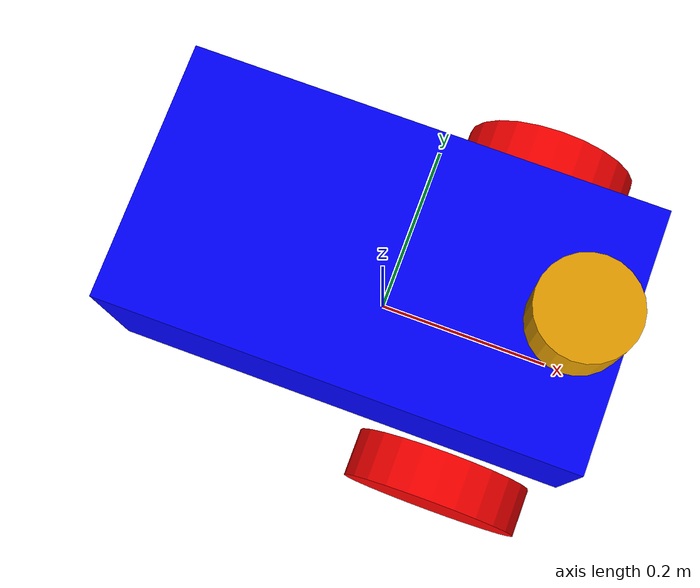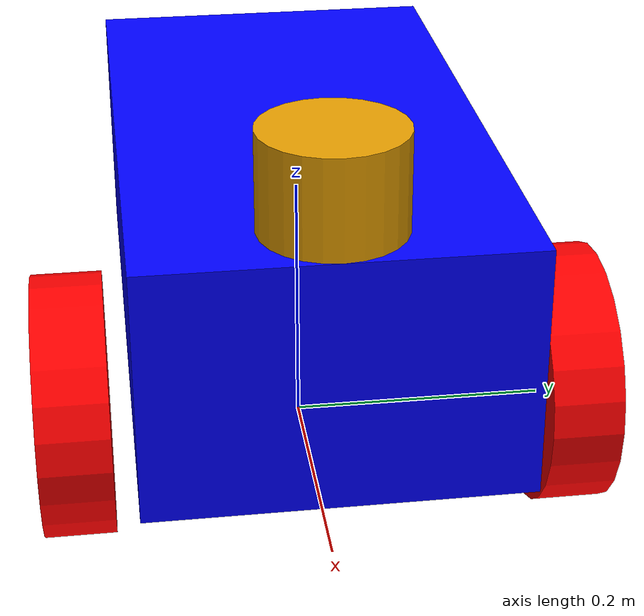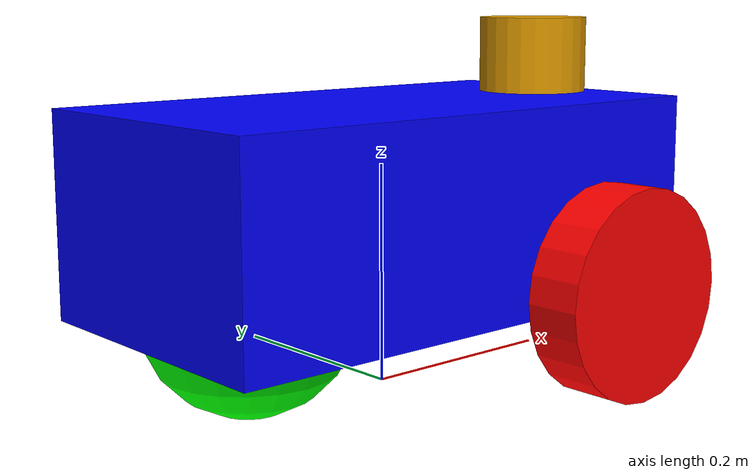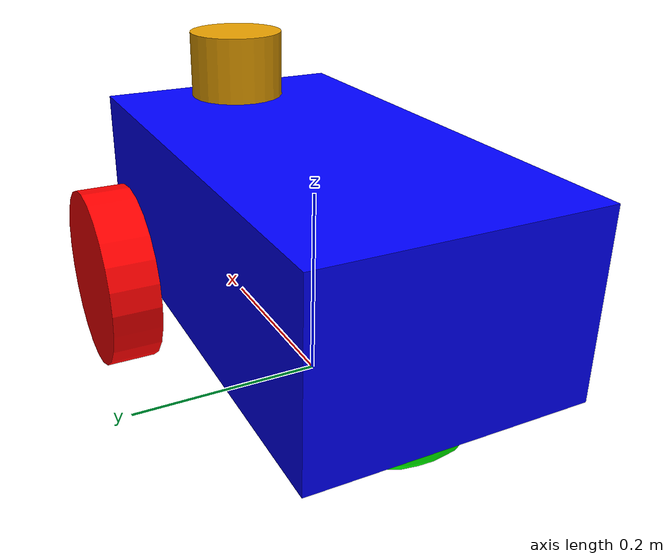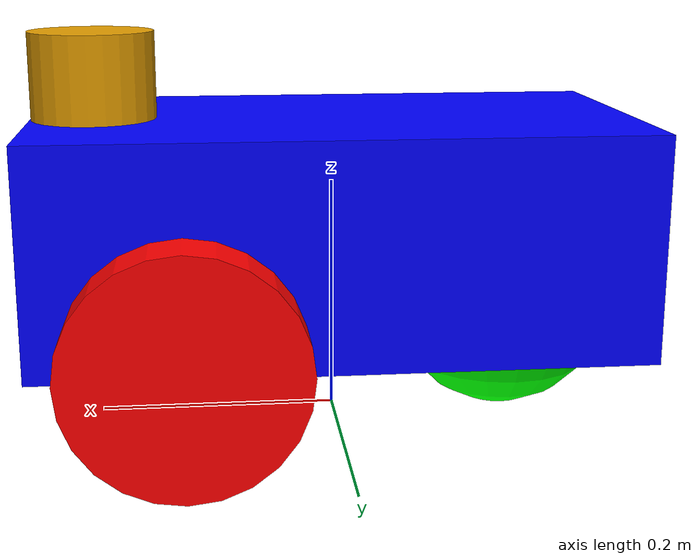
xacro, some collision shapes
<?xml version="1.0"?>
<robot xmlns:xacro="http://www.ros.org/wiki/xacro" name="juggernaut">
  <!-- Define robot constants -->

  <xacro:property name="base_off_ground" value="0.0714375"/> <!-- 2.8125 inches-->
  <xacro:property name="base_width" value="0.27305"/> <!-- 10.75 inches (chassis only; total width incl. wheels = 16 in / 0.4064 m)-->
  <xacro:property name="base_length" value="0.498475"/> <!-- 19.625 + 7.5 (pool noodle radius) inches-->
  <xacro:property name="base_height" value="0.18415"/> <!-- 7.25 inches-->
  <xacro:property name="pool_noodle_radius" value="0.047625"/> <!-- 1.875 inches-->

  <xacro:property name="wheel_radius" value="0.09445625"/> <!-- 3.71875 inches-->
  <xacro:property name="wheel_width" value="0.0508"/><!-- 2 inches-->
  <xacro:property name="wheel_ygap" value="0.041275"/><!-- 1.625 inches-->
  <xacro:property name="wheel_zoff" value="0.06985"/> <!-- 2.75 inches-->
  <xacro:property name="drive_wheel_xoff" value="0.1254125"/><!-- 4.9375 inches-->
  <xacro:property name="rear_wheel_xoff" value="0.1476375"/><!-- 5.8125 inches-->
  <xacro:property name="castor_wheel_radius" value="0.01"/> <!-- 3.71875 inches-->

  <xacro:property name="camera_screw_zoff" value="-0.0385"/>
  <xacro:property name="camera_screw_xoff" value="-0.007"/>

  <!-- old values defined as per the actual measurements -->
  <xacro:property name="lidar_radius" value="0.0516"/>
  <xacro:property name="lidar_length" value="0.0717"/>
  <xacro:property name="imu_length" value="0.03"/>
  <xacro:property name="imu_width" value="0.03"/>
  <xacro:property name="imu_height" value="0.02"/>
  <xacro:property name="hesai_centroid_y" value="-0.0298"/>
  <xacro:property name="hesai_centroid_z" value="0.0124"/>

  <xacro:arg name="use_nominal_extrinsics" default="true" />
  <xacro:arg name="sim" default="false" />
  <xacro:include filename="lidar.urdf.xacro" />
  <xacro:include filename="imu.urdf.xacro" />

  <xacro:lidar_3d_v1 parent="chassis" lidar_radius="${lidar_radius}" lidar_length="${lidar_length}">
    <origin xyz="${base_length/2-lidar_radius} 0 ${base_height/2}" rpy="0 0 0" />
  </xacro:lidar_3d_v1>

  <xacro:imu_v1 parent="chassis" imu_length="${imu_length}" imu_width="${imu_width}" imu_height="${imu_height}">
    <origin xyz="${base_length/2-lidar_radius} 0 0" rpy="0 0 0" />
  </xacro:imu_v1>

  <material name="transparent_blue">
    <color rgba="0.0 0.0 1.0 0.75"/>
  </material>
  <material name="blue">
    <color rgba="0.0 0.0 1.0 1.0"/>
  </material>
  <material name="red">
    <color rgba="1.0 0.0 0.0 1.0"/>
  </material>
  <material name="green">
    <color rgba="0.0 1.0 0.0 1.0"/>
  </material>
  <material name="Gray">
    <color rgba="0.5 0.5 0.5 1.0"/>
  </material>

  <!-- Wheel xacro -->
  <xacro:macro name="wheel" params="prefix x_reflect y_reflect wheel_xoff joint_type">
    <link name="${prefix}_link">
      <visual>
        <origin xyz="0 0 0" rpy="${pi/2} 0 0"/>
        <geometry>
            <cylinder radius="${wheel_radius}" length="${wheel_width}"/>
        </geometry>
        <material name="red"/>
      </visual>
      <inertial>
        <origin xyz="0 0 0" rpy="0 0 0"/>
        <mass value="0.6"/>
        <!-- solid cylinder around local Y (since we rotated the cylinder) -->
        <inertia ixx="0.0012" ixy="0" ixz="0" iyy="0.0010" iyz="0" izz="0.0012"/>
      </inertial>    <!-- ADD: collision matches visual -->
      <collision>
        <origin xyz="0 0 0" rpy="${pi/2} 0 0"/>
        <geometry>
          <cylinder radius="${wheel_radius}" length="${wheel_width}"/>
        </geometry>
        <!-- optional: stiffer contact so they don't sink -->
        <surface>
          <contact>
            <ode>
              <kp>1e6</kp>
              <kd>1.0</kd>
              <max_vel>0.1</max_vel>
              <min_depth>0.001</min_depth>
            </ode>
          </contact>
          <friction>
            <ode>
              <mu>1.0</mu>
              <mu2>1.0</mu2>
            </ode>
          </friction>
        </surface>
      </collision>
    </link>

    <gazebo reference="${prefix}_link">
        <material>Gazebo/Red</material>
        <mu1>1.5</mu1>
        <mu2>1.5</mu2>
        <kp>1e6</kp>
        <kd>1.0</kd>
    </gazebo>

    <joint name="${prefix}_joint" type="${joint_type}">
      <parent link="chassis"/>
      <child link="${prefix}_link"/>
      <origin xyz="${x_reflect*wheel_xoff} ${y_reflect*(base_width/2+wheel_ygap)} ${-wheel_zoff}" rpy="0 0 0"/>
      <axis xyz="0 1 0"/>
      <limit effort="20.0" velocity="10.0"/>
    </joint>
  </xacro:macro>

  <link name="base_footprint"/>

  <joint name="base_footprint_to_chassis" type="fixed">
    <parent link="base_footprint"/>
    <child link="chassis"/>
    <origin xyz="0 0 ${(wheel_radius+wheel_zoff)}" rpy="0 0 0"/>
  </joint>

  <link name="chassis">
    <inertial>
      <origin xyz="0 0 0" rpy="0 0 0"/> <!-- change based on TF -->
      <mass value="10.0"/>
      <inertia ixx="0.128066" ixy="0.0" ixz="0.0" iyy="0.235324" iyz="0.0" izz="0.306871"/>
    </inertial>
    <visual>
      <origin xyz="0 0 0" rpy="0 0 0"/>
      <geometry>
        <box size="${base_length} ${base_width} ${base_height}"/>
      </geometry>
      <material name="blue"/>
    </visual>
    <collision>
      <origin xyz="0 0 0" rpy="0 0 0"/> <!-- change based on TF -->
      <geometry>
        <box size="${base_length} ${base_width} ${base_height}"/>
      </geometry>
    </collision>
  </link>

  <link name="caster">
    <inertial>
      <origin xyz="0 0 0" rpy="0 0 0"/>
      <mass value="1.0"/>
      <inertia ixx="0.1" ixy="0.0" ixz="0.0" iyy="0.1" iyz="0.0" izz="0.1"/>
    </inertial>
    <visual>
      <origin xyz="0 0 0" rpy="0 0 0"/>
      <geometry>
        <sphere radius="${wheel_radius}"/>
      </geometry>
      <material name="green"/>
    </visual>
    <collision>
      <origin xyz="0 0 0" rpy="0 0 0"/>
      <geometry>
        <sphere radius="${wheel_radius}"/>
      </geometry>
    </collision>
  </link>

  <joint name="chassis_caster_ball" type="continuous">
    <parent link="chassis"/>
    <child link="caster"/>
    <origin xyz="${-1*rear_wheel_xoff} 0.0 ${-1*wheel_zoff}" rpy="0 0 0"/>
  </joint>

  <xacro:wheel prefix="drivewhl_l" x_reflect="1" y_reflect="1" wheel_xoff="${drive_wheel_xoff}" joint_type="continuous"/>
  <xacro:wheel prefix="drivewhl_r" x_reflect="1" y_reflect="-1" wheel_xoff="${drive_wheel_xoff}" joint_type="continuous"/>
  <gazebo>
    <plugin filename="gz-sim-diff-drive-system" name="gz::sim::systems::DiffDrive">
        <left_joint>drivewhl_l_joint</left_joint>
        <right_joint>drivewhl_r_joint</right_joint>
        <wheel_separation>${base_width+2*wheel_ygap}</wheel_separation> <!-- Adjust to your robot's width (meters) -->
        <wheel_radius>${wheel_radius}</wheel_radius>     <!-- Adjust to your wheel radius (meters) -->
        <topic>cmd_vel</topic>
        <odom_topic>odom_wheel</odom_topic>   <!-- wheel encoder odom — drifts on ramp/slip -->
        <odom_frame>odom</odom_frame>
        <robot_base_frame>base_footprint</robot_base_frame>
        <tf_topic>/tf</tf_topic>
        <robot_param_node>/robot_state_publisher</robot_param_node>
    </plugin>
  </gazebo>
  <gazebo>
    <plugin filename="gz-sim-odometry-publisher-system" name="gz::sim::systems::OdometryPublisher">
        <odom_frame>odom</odom_frame>
        <robot_base_frame>base_footprint</robot_base_frame>
        <odom_topic>/odom</odom_topic>
        <tf_topic>/tf</tf_topic>
        <odom_publish_frequency>50</odom_publish_frequency>
    </plugin>
  </gazebo>
  <gazebo>
    <plugin filename="gz-sim-joint-state-publisher-system" name="gz::sim::systems::JointStatePublisher">
        <topic>joint_states</topic> <joint_name>drivewhl_l_joint</joint_name>
        <joint_name>drivewhl_r_joint</joint_name>
    </plugin>
  </gazebo>
   <!-- INSERT GROUND TRUTH POSE PUBLISHER HERE -->
  <gazebo>
    <plugin filename="libignition-gazebo-pose-publisher-system.so"
          name="ignition::gazebo::systems::PosePublisher">
      <publish_link_pose>false</publish_link_pose>
      <publish_visual_pose>false</publish_visual_pose>
      <publish_nested_model_pose>true</publish_nested_model_pose>
      <use_pose_vector_msg>true</use_pose_vector_msg>
      <static_publisher>false</static_publisher>
      <publish_model_pose>true</publish_model_pose>
    </plugin>
  </gazebo>

</robot>

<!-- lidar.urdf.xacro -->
<robot xmlns:xacro="http://www.ros.org/wiki/xacro" name="lidar_3d_v1">

    <xacro:macro name="lidar_3d_v1" params="parent lidar_radius lidar_length *origin">

    <joint name="lidar_joint" type="fixed">
      <xacro:insert_block name="origin" />
      <parent link="${parent}"/>
      <child link="hesai_lidar"/>
    </joint>

    <link name="hesai_lidar">
      <inertial>
        <origin xyz="0 0 0" rpy="0 0 0"/>
        <mass value="0.83"/>
        <inertia
          ixx="0.0009080594249999999" ixy="0.0" ixz="0.0"
          iyy="0.0009080594249999999" iyz="0.0"
          izz="0.0011049624"/>
      </inertial>

      <visual>
        <origin xyz="0 0 0" rpy="0 0 0"/>
        <geometry>
          <mesh filename="package://robot_description/urdf/meshes/lidar_3d_v1.dae"/>
        </geometry>
      </visual>

      <collision name="collision">
        <origin xyz="0 0 0.03585" rpy="0 0 0"/>
        <geometry>
          <cylinder radius="${lidar_radius}" length="${lidar_length}"/>
        </geometry>
      </collision>
    </link>

    <xacro:if value="$(arg sim)">
    <gazebo reference="hesai_lidar">
      <sensor type="gpu_lidar" name="gpu_lidar">
        <pose>0 0 0 0 0 0</pose>
        <always_on>true</always_on>
        <update_rate>10</update_rate>
        <visualize>false</visualize>
        <topic>lidar</topic>
        <ignition_frame_id>hesai_lidar</ignition_frame_id>
        <ray>
          <scan>
            <horizontal>
              <samples>640</samples>
              <resolution>1</resolution>
              <min_angle>-1.5708</min_angle>
              <max_angle>1.5708</max_angle>
            </horizontal>
            <vertical>
              <samples>32</samples>
              <resolution>1</resolution>
              <min_angle>-0.2618</min_angle>
              <max_angle>0.2618</max_angle>
            </vertical>
          </scan>
          <range>
            <min>0.08</min>
            <max>30.0</max>
            <resolution>0.01</resolution>
          </range>
        </ray>
      </sensor>
    </gazebo>
    </xacro:if>

  </xacro:macro>
</robot>

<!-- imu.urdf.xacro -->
<robot xmlns:xacro="http://www.ros.org/wiki/xacro" name="imu_v1">

  <xacro:macro name="imu_v1" params="parent imu_length imu_width imu_height *origin">

    <joint name="imu_joint" type="fixed">
      <xacro:insert_block name="origin" />
      <parent link="${parent}"/>
      <child link="imu_link"/>
    </joint>

    <link name="imu_link">
      <inertial>
        <origin xyz="0 0 0" rpy="0 0 0"/>
        <mass value="0.05"/>
        <inertia ixx="1e-05" ixy="0.0" ixz="0.0" iyy="1e-05" iyz="0.0" izz="2e-05"/>
      </inertial>

      <visual>
        <origin xyz="0 0 0" rpy="0 0 0"/>
        <geometry>
          <box size="${imu_length} ${imu_width} ${imu_height}"/>
        </geometry>
        <material name="Gray"/>
      </visual>

      <collision>
        <origin xyz="0 0 0" rpy="0 0 0"/>
        <geometry>
          <box size="${imu_length} ${imu_width} ${imu_height}"/>
        </geometry>
      </collision>
    </link>
    <xacro:if value="$(arg sim)">
      <gazebo reference="imu_link">
        <sensor type="imu" name="imu_sensor">
          <always_on>1</always_on>
          <update_rate>100</update_rate>
          <visualize>true</visualize>
          <topic>imu</topic>
          <ignition_frame_id>imu_link</ignition_frame_id>
          <plugin filename="ignition-gazebo-imu-system" name="ignition::gazebo::systems::Imu">
          </plugin>
        </sensor>
      </gazebo>
    </xacro:if>
  </xacro:macro>
</robot>
